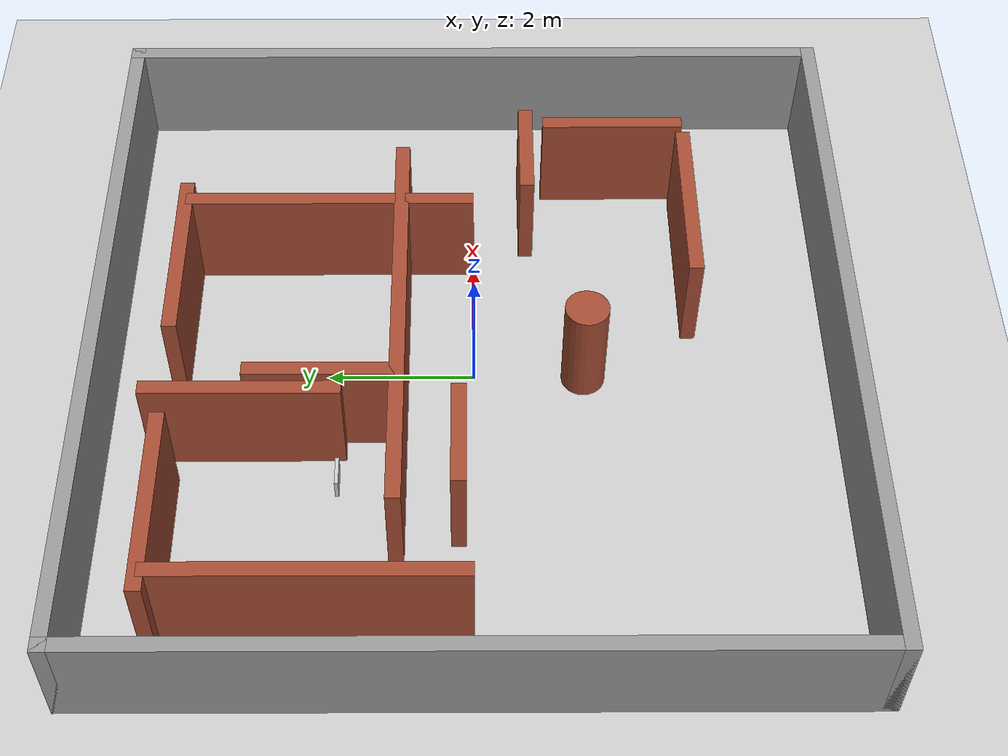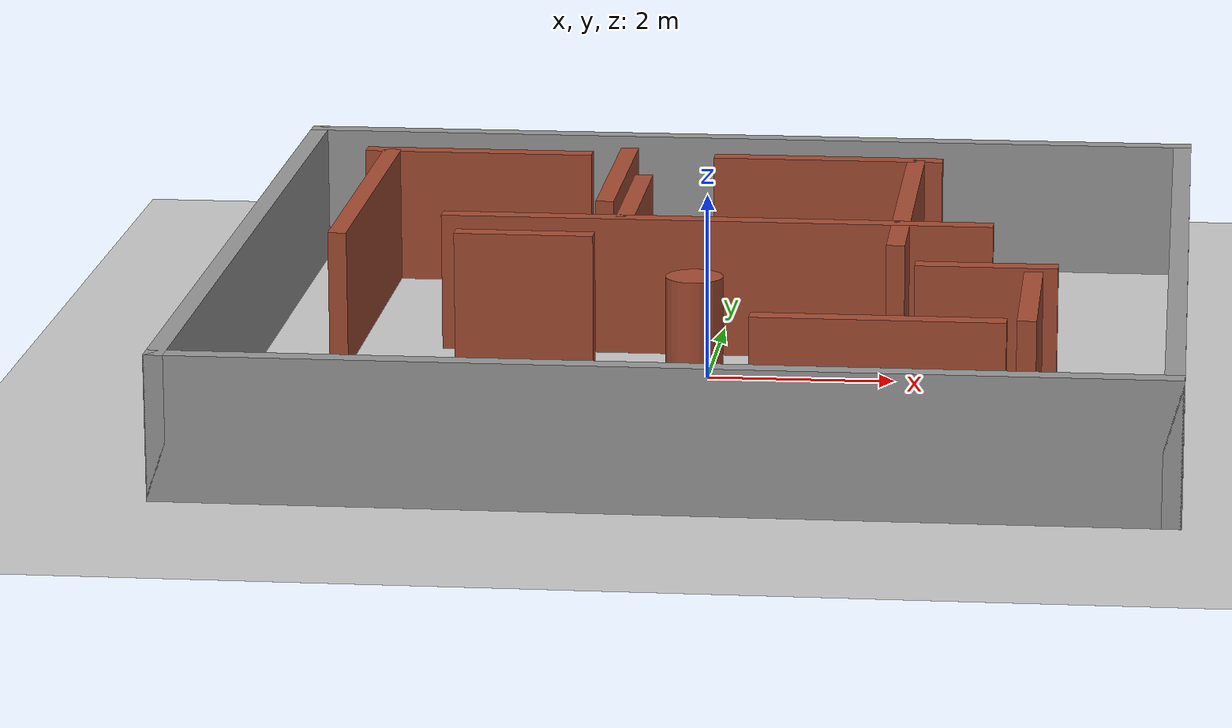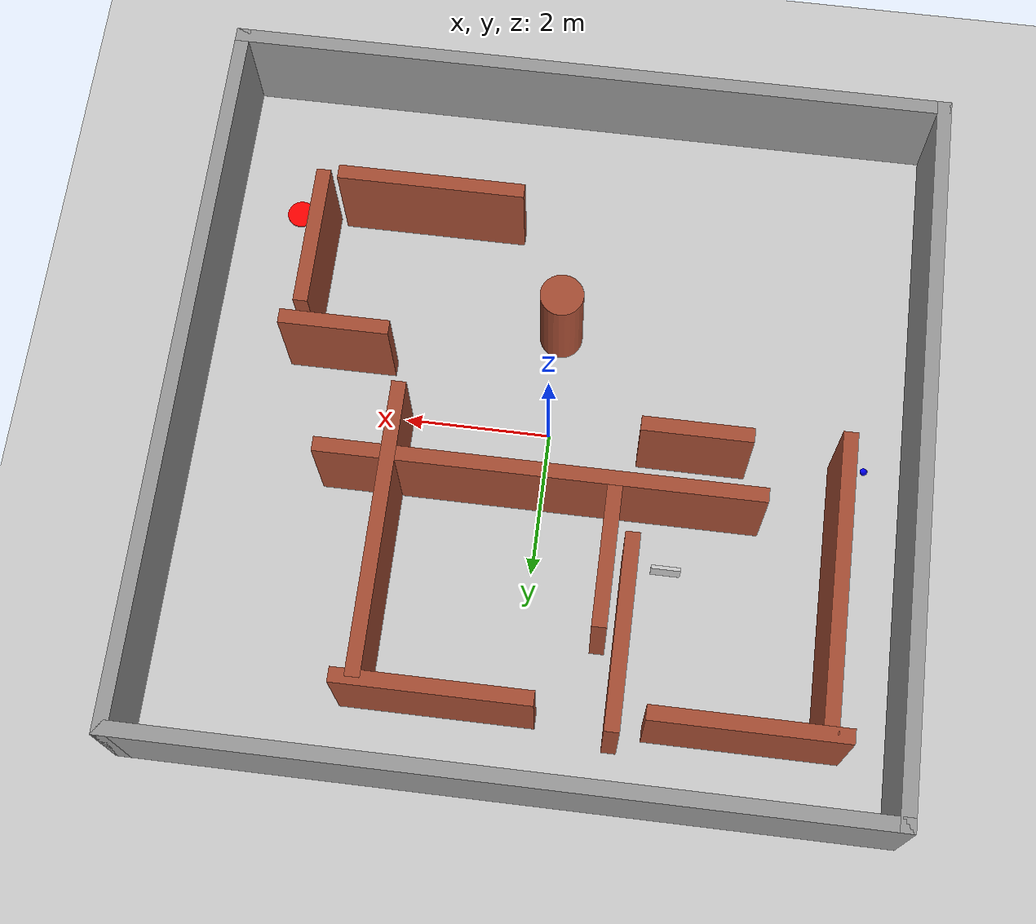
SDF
<?xml version="1.0"?>
<sdf version="1.6">
  <!-- maze world for Gazebo -->
  <world name="maze_world">

    <!-- Ground plane -->
    <include>
      <uri>model://ground_plane</uri>
    </include>

    <!-- Softer sunlight -->
    <light name="sun" type="directional">
      <direction>-0.5 0.2 -1</direction>
      <diffuse>0.6 0.6 0.6 1</diffuse>
      <specular>0.1 0.1 0.1 1</specular>
      <attenuation>
        <range>100</range>
        <constant>0.9</constant>
        <linear>0.01</linear>
        <quadratic>0.001</quadratic>
      </attenuation>
    </light>

    <!-- Ambient maze lighting -->
    <light name="maze_light" type="point">
      <pose>0 0 3 0 0 0</pose>
      <diffuse>0.8 0.8 0.8 1</diffuse>
      <specular>0.2 0.2 0.2 1</specular>
      <attenuation>
        <range>10</range>
        <constant>0.5</constant>
        <linear>0.01</linear>
        <quadratic>0.001</quadratic>
      </attenuation>
    </light>

    <!-- Outer boundary (big square) -->
    <!-- outer wall (stone texture) -->
    <model name="wall_outer_north">
      <static>true</static>
      <pose>0 5 0.75 0 0 0</pose>
      <link name="link">
        <collision name="collision">
          <geometry>
            <box>
              <size>10.2 0.2 1.5</size>
            </box>
          </geometry>
        </collision>
        <visual name="visual">
          <geometry>
            <box>
              <size>10.2 0.2 1.5</size>
            </box>
          </geometry>
          <material>
            <script>
              <uri>file://media/materials/scripts/gazebo.material</uri>
              <name>Gazebo/Stone</name>
            </script>
            <ambient>0.2 0.2 0.2 1</ambient>
            <diffuse>0.6 0.6 0.6 1</diffuse>
            <specular>0.05 0.05 0.05 1</specular>
          </material>
        </visual>
      </link>
    </model>

    <model name="wall_outer_south">
      <static>true</static>
      <pose>0 -5 0.75 0 0 0</pose>
      <link name="link">
        <collision name="collision">
          <geometry>
            <box>
              <size>10.2 0.2 1.5</size>
            </box>
          </geometry>
        </collision>
        <visual name="visual">
          <geometry>
            <box>
              <size>10.2 0.2 1.5</size>
            </box>
          </geometry>
          <material>
            <script>
              <uri>file://media/materials/scripts/gazebo.material</uri>
              <name>Gazebo/Stone</name>
            </script>
            <ambient>0.2 0.2 0.2 1</ambient>
            <diffuse>0.6 0.6 0.6 1</diffuse>
            <specular>0.05 0.05 0.05 1</specular>
          </material>
        </visual>
      </link>
    </model>

    <model name="wall_outer_east">
      <static>true</static>
      <pose>5 -0 0.75 0 0 0</pose>
      <link name="link">
        <collision name="collision">
          <geometry>
            <box>
              <size>0.2 10.2 1.5</size>
            </box>
          </geometry>
        </collision>
        <visual name="visual">
          <geometry>
            <box>
              <size>0.2 10.2 1.5</size>
            </box>
          </geometry>
          <material>
            <script>
              <uri>file://media/materials/scripts/gazebo.material</uri>
              <name>Gazebo/Stone</name>
            </script>
            <ambient>0.2 0.2 0.2 1</ambient>
            <diffuse>0.6 0.6 0.6 1</diffuse>
            <specular>0.05 0.05 0.05 1</specular>
          </material>
        </visual>
      </link>
    </model>

    <model name="wall_outer_west">
      <static>true</static>
      <pose>-5 0 0.75 0 0 0</pose>
      <link name="link">
        <collision name="collision">
          <geometry>
            <box>
              <size>0.2 10.2 1.5</size>
            </box>
          </geometry>
        </collision>
        <visual name="visual">
          <geometry>
            <box>
              <size>0.2 10.2 1.5</size>
            </box>
          </geometry>
          <material>
            <script>
              <uri>file://media/materials/scripts/gazebo.material</uri>
              <name>Gazebo/Stone</name>
            </script>
            <ambient>0.2 0.2 0.2 1</ambient>
            <diffuse>0.6 0.6 0.6 1</diffuse>
            <specular>0.05 0.05 0.05 1</specular>
          </material>
        </visual>
      </link>
    </model>

    <!-- Internal maze layout: a handcrafted pattern of corridors and dead-ends. -->
    <!-- Row A (y = 4 -> y = 2): horizontal segments and gaps for corridors -->
    <!-- inner wall (brick texture) -->
    <model name="maze_wall_A1">
      <static>true</static>
      <pose>-3 4 0.75 0 0 0</pose>
      <link name="link">
        <collision name="collision">
          <geometry>
            <box>
              <size>2.6 0.2 1.5</size>
            </box>
          </geometry>
        </collision>
        <visual name="visual">
          <geometry>
            <box>
              <size>2.6 0.2 1.5</size>
            </box>
          </geometry>
          <material>
            <script>
              <uri>file://media/materials/scripts/gazebo.material</uri>
              <name>Gazebo/Bricks</name>
            </script>
            <ambient>0.3 0.3 0.3 1</ambient>
            <diffuse>0.8 0.8 0.8 1</diffuse>
            <specular>0.1 0.1 0.1 1</specular>
          </material>
        </visual>
      </link>
    </model>

    <model name="maze_wall_A2">
      <static>true</static>
      <pose>1 4 0.75 0 0 0</pose>
      <link name="link">
        <collision name="collision">
          <geometry>
            <box>
              <size>2.6 0.2 1.5</size>
            </box>
          </geometry>
        </collision>
        <visual name="visual">
          <geometry>
            <box>
              <size>2.6 0.2 1.5</size>
            </box>
          </geometry>
          <material>
            <script>
              <uri>file://media/materials/scripts/gazebo.material</uri>
              <name>Gazebo/Bricks</name>
            </script>
            <ambient>0.3 0.3 0.3 1</ambient>
            <diffuse>0.8 0.8 0.8 1</diffuse>
            <specular>0.1 0.1 0.1 1</specular>
          </material>
        </visual>
      </link>
    </model>

    <!-- Vertical separators for row A -->
    <model name="A_v1">
      <static>true</static>
      <pose>-1.3 3 0.75 0 0 0</pose>
      <link name="link">
        <collision name="collision">
          <geometry>
            <box>
              <size>0.2 2.6 1.5</size>
            </box>
          </geometry>
        </collision>
        <visual name="visual">
          <geometry>
            <box>
              <size>0.2 2.6 1.5</size>
            </box>
          </geometry>
          <material>
            <script>
              <uri>file://media/materials/scripts/gazebo.material</uri>
              <name>Gazebo/Bricks</name>
            </script>
            <ambient>0.3 0.3 0.3 1</ambient>
            <diffuse>0.8 0.8 0.8 1</diffuse>
            <specular>0.1 0.1 0.1 1</specular>
          </material>
        </visual>
      </link>
    </model>

    <!-- Column B (x = -4 to 4) vertical and horizontal pieces -->
    <model name="maze_wall_B1">
      <static>true</static>
      <pose>-4 2 0.75 0 0 0</pose>
      <link name="link">
        <collision name="collision">
          <geometry>
            <box>
              <size>0.2 4.0 1.5</size>
            </box>
          </geometry>
        </collision>
        <visual name="visual">
          <geometry>
            <box>
              <size>0.2 4.0 1.5</size>
            </box>
          </geometry>
          <material>
            <script>
              <uri>file://media/materials/scripts/gazebo.material</uri>
              <name>Gazebo/Bricks</name>
            </script>
            <ambient>0.3 0.3 0.3 1</ambient>
            <diffuse>0.8 0.8 0.8 1</diffuse>
            <specular>0.1 0.1 0.1 1</specular>
          </material>
        </visual>
      </link>
    </model>

    <model name="maze_wall_B2">
      <static>true</static>
      <pose>-1 2 0.75 0 0 0</pose>
      <link name="link">
        <collision name="collision">
          <geometry>
            <box>
              <size>0.2 2.0 1.5</size>
            </box>
          </geometry>
        </collision>
        <visual name="visual">
          <geometry>
            <box>
              <size>0.2 2.0 1.5</size>
            </box>
          </geometry>
          <material>
            <script>
              <uri>file://media/materials/scripts/gazebo.material</uri>
              <name>Gazebo/Bricks</name>
            </script>
            <ambient>0.3 0.3 0.3 1</ambient>
            <diffuse>0.8 0.8 0.8 1</diffuse>
            <specular>0.1 0.1 0.1 1</specular>
          </material>
        </visual>
      </link>
    </model>

    <model name="maze_wall_B3">
      <static>true</static>
      <pose>2 2 0.75 0 0 0</pose>
      <link name="link">
        <collision name="collision">
          <geometry>
            <box>
              <size>0.2 4.0 1.5</size>
            </box>
          </geometry>
        </collision>
        <visual name="visual">
          <geometry>
            <box>
              <size>0.2 4.0 1.5</size>
            </box>
          </geometry>
          <material>
            <script>
              <uri>file://media/materials/scripts/gazebo.material</uri>
              <name>Gazebo/Bricks</name>
            </script>
            <ambient>0.3 0.3 0.3 1</ambient>
            <diffuse>0.8 0.8 0.8 1</diffuse>
            <specular>0.1 0.1 0.1 1</specular>
          </material>
        </visual>
      </link>
    </model>

    <!-- Middle horizontal corridors -->
    <model name="maze_wall_C1">
      <static>true</static>
      <pose>0 1 0.75 0 0 0</pose>
      <link name="link">
        <collision name="collision">
          <geometry>
            <box>
              <size>6 0.2 1.5</size>
            </box>
          </geometry>
        </collision>
        <visual name="visual">
          <geometry>
            <box>
              <size>6 0.2 1.5</size>
            </box>
          </geometry>
          <material>
            <script>
              <uri>file://media/materials/scripts/gazebo.material</uri>
              <name>Gazebo/Bricks</name>
            </script>
            <ambient>0.3 0.3 0.3 1</ambient>
            <diffuse>0.8 0.8 0.8 1</diffuse>
            <specular>0.1 0.1 0.1 1</specular>
          </material>
        </visual>
      </link>
    </model>

    <!-- A few dead-end stubs to show complexity -->
    <model name="dead_end_1">
      <static>true</static>
      <pose>-2 0.2 0.75 0 0 0</pose>
      <link name="link">
        <collision name="collision">
          <geometry>
            <box>
              <size>1.5 0.2 1.5</size>
            </box>
          </geometry>
        </collision>
        <visual name="visual">
          <geometry>
            <box>
              <size>1.5 0.2 1.5</size>
            </box>
          </geometry>
          <material>
            <script>
              <uri>file://media/materials/scripts/gazebo.material</uri>
              <name>Gazebo/Bricks</name>
            </script>
            <ambient>0.3 0.3 0.3 1</ambient>
            <diffuse>0.8 0.8 0.8 1</diffuse>
            <specular>0.1 0.1 0.1 1</specular>
          </material>
        </visual>
      </link>
    </model>

    <model name="dead_end_2">
      <static>true</static>
      <pose>3 -0.75 0.75 0 0 0</pose>
      <link name="link">
        <collision name="collision">
          <geometry>
            <box>
              <size>1.5 0.2 1.5</size>
            </box>
          </geometry>
        </collision>
        <visual name="visual">
          <geometry>
            <box>
              <size>1.5 0.2 1.5</size>
            </box>
          </geometry>
          <material>
            <script>
              <uri>file://media/materials/scripts/gazebo.material</uri>
              <name>Gazebo/Bricks</name>
            </script>
            <ambient>0.3 0.3 0.3 1</ambient>
            <diffuse>0.8 0.8 0.8 1</diffuse>
            <specular>0.1 0.1 0.1 1</specular>
          </material>
        </visual>
      </link>
    </model>

    <!-- Lower-right cluster of turns -->
    <model name="LR_v1">
      <static>true</static>
      <pose>3.5 -2 0.75 0 0 0</pose>
      <link name="link">
        <collision name="collision">
          <geometry>
            <box>
              <size>0.2 2.0 1.5</size>
            </box>
          </geometry>
        </collision>
        <visual name="visual">
          <geometry>
            <box>
              <size>0.2 2.0 1.5</size>
            </box>
          </geometry>
          <material>
            <script>
              <uri>file://media/materials/scripts/gazebo.material</uri>
              <name>Gazebo/Bricks</name>
            </script>
            <ambient>0.3 0.3 0.3 1</ambient>
            <diffuse>0.8 0.8 0.8 1</diffuse>
            <specular>0.1 0.1 0.1 1</specular>
          </material>
        </visual>
      </link>
    </model>

    <model name="LR_h1">
      <static>true</static>
      <pose>2.0 -3 0.75 0 0 0</pose>
      <link name="link">
        <collision name="collision">
          <geometry>
            <box>
              <size>2.6 0.2 1.5</size>
            </box>
          </geometry>
        </collision>
        <visual name="visual">
          <geometry>
            <box>
              <size>2.6 0.2 1.5</size>
            </box>
          </geometry>
          <material>
            <script>
              <uri>file://media/materials/scripts/gazebo.material</uri>
              <name>Gazebo/Bricks</name>
            </script>
            <ambient>0.3 0.3 0.3 1</ambient>
            <diffuse>0.8 0.8 0.8 1</diffuse>
            <specular>0.1 0.1 0.1 1</specular>
          </material>
        </visual>
      </link>
    </model>

    <!-- Central pillar to create circulation -->
    <model name="central_pillar">
      <static>true</static>
      <pose>0 -1.5 0.75 0 0 0</pose>
      <link name="link">
        <collision name="collision">
          <geometry>
            <cylinder>
              <radius>0.3</radius>
              <length>1.5</length>
            </cylinder>
          </geometry>
        </collision>
        <visual name="visual">
          <geometry>
            <cylinder>
              <radius>0.3</radius>
              <length>1.5</length>
            </cylinder>
          </geometry>
          <material>
            <script>
              <uri>file://media/materials/scripts/gazebo.material</uri>
              <name>Gazebo/Bricks</name>
            </script>
            <ambient>0.3 0.3 0.3 1</ambient>
            <diffuse>0.8 0.8 0.8 1</diffuse>
            <specular>0.1 0.1 0.1 1</specular>
          </material>
        </visual>
      </link>
    </model>

    <!-- Optional visual-only ramps/signposts (non-colliding) if you want landmarks -->
    <model name="sign_1">
      <static>true</static>
      <pose>-1.8 1.8 0.2 0 0 0</pose>
      <link name="link">
        <visual name="visual">
          <geometry>
            <box>
              <size>0.4 0.05 0.3</size>
            </box>
          </geometry>
          <material>
            <ambient>0.3 0.3 0.3 1</ambient>
            <diffuse>0.8 0.8 0.8 1</diffuse>
            <specular>0.1 0.1 0.1 1</specular>
          </material>
        </visual>
      </link>
    </model>

    <!-- Goal marker -->
    <model name="maze_goal_marker">
      <static>true</static>
      <pose>4.0 -3.0 0.01 0 0 0</pose>
      <link name="link">
        <visual name="visual">
          <geometry>
            <cylinder>
              <radius>0.2</radius>
              <length>0.02</length>
            </cylinder>
          </geometry>
          <material>
            <ambient>1 0 0 1</ambient>
          </material>
        </visual>
      </link>
    </model>

    <!-- Robot spawn marker: use this as a reference to place your robot when launching -->
    <model name="robot_spawn">
      <static>true</static>
      <pose>-4.4 0 0 0 0 0</pose>
      <link name="link">
        <visual name="visual">
          <geometry>
            <sphere>
              <radius>0.05</radius>
              <length>0.02</length>
            </sphere>
          </geometry>
          <material>
            <ambient>0 0 1 1</ambient>
          </material>
        </visual>
      </link>
    </model>

  </world>
</sdf>
